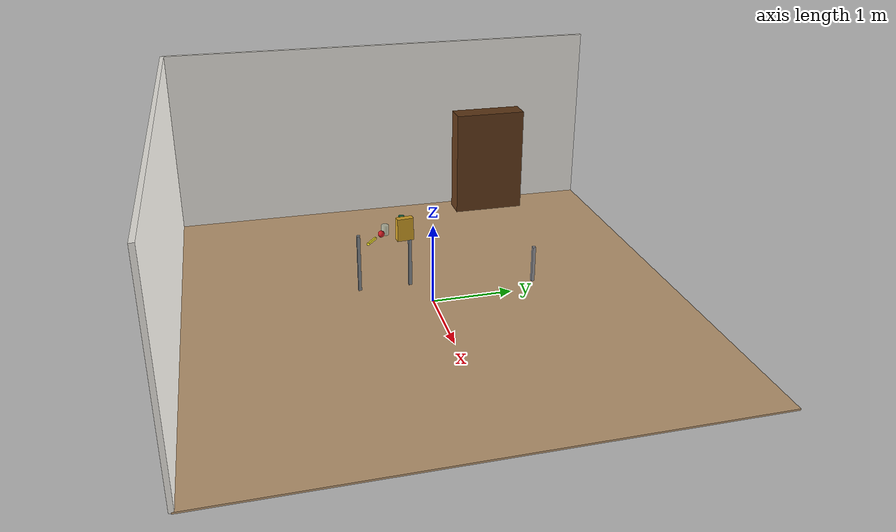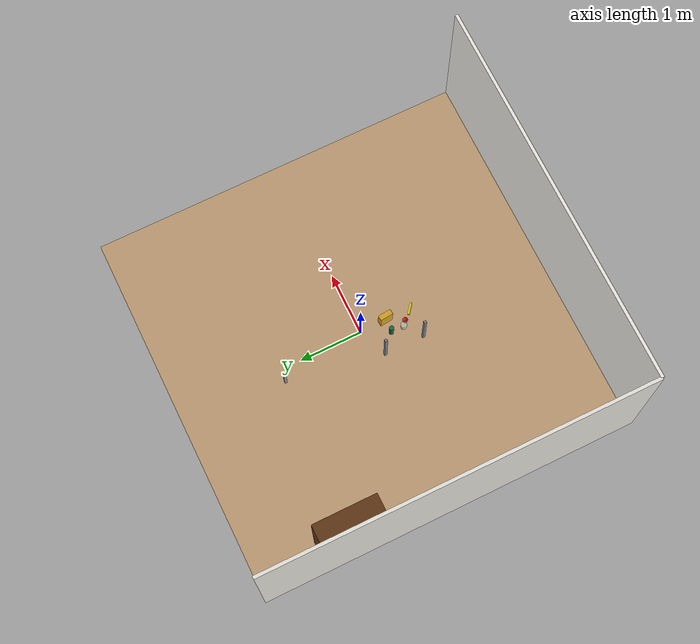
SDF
<sdf version="1.10">
 <world name="bps_room">
  <model name="floor">
   <static>true</static>
   <link name="link">
    <collision name="collision"><geometry><box><size>6 6 0.02</size></box></geometry></collision>
    <visual name="visual">
     <geometry><box><size>6 6 0.02</size></box></geometry>
     <material><ambient>0.76 0.62 0.46 1</ambient><diffuse>0.76 0.62 0.46 1</diffuse></material>
    </visual>
   </link>
  </model>
  <model name="wall_south">
   <static>true</static>
   <pose>0 -3 1.25 0 0 0</pose>
   <link name="link">
    <collision name="collision"><geometry><box><size>6 0.05 2.5</size></box></geometry></collision>
    <visual name="visual">
     <geometry><box><size>6 0.05 2.5</size></box></geometry>
     <material><ambient>0.95 0.94 0.91 1</ambient><diffuse>0.95 0.94 0.91 1</diffuse></material>
    </visual>
   </link>
  </model>
  <model name="wall_west">
   <static>true</static>
   <pose>-3 0 1.25 0 0 0</pose>
   <link name="link">
    <collision name="collision"><geometry><box><size>0.05 6 2.5</size></box></geometry></collision>
    <visual name="visual">
     <geometry><box><size>0.05 6 2.5</size></box></geometry>
     <material><ambient>0.93 0.92 0.89 1</ambient><diffuse>0.93 0.92 0.89 1</diffuse></material>
    </visual>
   </link>
  </model>
  <model name="bookshelf_body">
   <static>true</static>
   <pose>-2.7 1.5 0.75 0 0 0</pose>
   <link name="link">
    <collision name="collision"><geometry><box><size>0.3 1.0 1.5</size></box></geometry></collision>
    <visual name="visual">
     <geometry><box><size>0.3 1.0 1.5</size></box></geometry>
     <material><ambient>0.38 0.22 0.09 1</ambient><diffuse>0.38 0.22 0.09 1</diffuse></material>
    </visual>
   </link>
  </model>
  <model name="chair_leg_fl">
   <static>true</static>
   <pose>-0.2 1.35 0.24 0 0 0</pose>
   <link name="link">
    <collision name="collision"><geometry><box><size>0.04 0.04 0.48</size></box></geometry></collision>
    <visual name="visual">
     <geometry><box><size>0.04 0.04 0.48</size></box></geometry>
     <material><ambient>0.60 0.60 0.62 1</ambient><diffuse>0.60 0.60 0.62 1</diffuse></material>
    </visual>
   </link>
  </model>
  <model name="table_leg_fl">
   <static>true</static>
   <pose>-0.47 -0.82 0.375 0 0 0</pose>
   <link name="link">
    <collision name="collision"><geometry><box><size>0.04 0.04 0.75</size></box></geometry></collision>
    <visual name="visual">
     <geometry><box><size>0.04 0.04 0.75</size></box></geometry>
     <material><ambient>0.50 0.52 0.54 1</ambient><diffuse>0.50 0.52 0.54 1</diffuse></material>
    </visual>
   </link>
  </model>
  <model name="table_leg_bl">
   <static>true</static>
   <pose>-0.47 -0.18 0.375 0 0 0</pose>
   <link name="link">
    <collision name="collision"><geometry><box><size>0.04 0.04 0.75</size></box></geometry></collision>
    <visual name="visual">
     <geometry><box><size>0.04 0.04 0.75</size></box></geometry>
     <material><ambient>0.50 0.52 0.54 1</ambient><diffuse>0.50 0.52 0.54 1</diffuse></material>
    </visual>
   </link>
  </model>
  <model name="obj_bottle">
   <static>true</static>
   <pose>-0.40 -0.30 0.88 0 0 0.2</pose>
   <link name="link">
    <collision name="collision">
     <geometry><cylinder><radius>0.035</radius><length>0.22</length></cylinder></geometry>
    </collision>
    <visual name="visual">
     <geometry><cylinder><radius>0.035</radius><length>0.22</length></cylinder></geometry>
     <material>
      <ambient>0.10 0.42 0.28 1</ambient>
      <diffuse>0.10 0.42 0.28 1</diffuse>
      <specular>0.4 0.4 0.4 1</specular>
     </material>
     <plugin filename="gz-sim-label-system" name="gz::sim::systems::Label"><label>1</label></plugin>
    </visual>
   </link>
  </model>
  <model name="obj_cereal_box">
   <static>true</static>
   <pose>-0.20 -0.30 0.91 0 0 0.1</pose>
   <link name="link">
    <collision name="collision"><geometry><box><size>0.08 0.20 0.28</size></box></geometry></collision>
    <visual name="visual">
     <geometry><box><size>0.08 0.20 0.28</size></box></geometry>
     <material>
      <ambient>0.85 0.65 0.15 1</ambient>
      <diffuse>0.85 0.65 0.15 1</diffuse>
      <specular>0.2 0.2 0.2 1</specular>
     </material>
     <plugin filename="gz-sim-label-system" name="gz::sim::systems::Label"><label>2</label></plugin>
    </visual>
   </link>
  </model>
  <model name="obj_glass_jar">
   <static>true</static>
   <pose>-0.40 -0.50 0.83 0 0 0</pose>
   <link name="link">
    <collision name="collision">
     <geometry><cylinder><radius>0.045</radius><length>0.12</length></cylinder></geometry>
    </collision>
    <visual name="visual">
     <geometry><cylinder><radius>0.045</radius><length>0.12</length></cylinder></geometry>
     <material>
      <ambient>0.75 0.88 0.85 0.55</ambient>
      <diffuse>0.75 0.88 0.85 0.55</diffuse>
      <specular>0.6 0.6 0.6 1</specular>
     </material>
     <plugin filename="gz-sim-label-system" name="gz::sim::systems::Label"><label>8</label></plugin>
    </visual>
   </link>
  </model>
  <model name="obj_apple">
   <static>true</static>
   <pose>-0.33 -0.56 0.81 0 0 0</pose>
   <link name="link">
    <collision name="collision"><geometry><sphere><radius>0.04</radius></sphere></geometry></collision>
    <visual name="visual">
     <geometry><sphere><radius>0.04</radius></sphere></geometry>
     <material>
      <ambient>0.80 0.10 0.12 1</ambient>
      <diffuse>0.80 0.10 0.12 1</diffuse>
      <specular>0.5 0.5 0.5 1</specular>
     </material>
     <plugin filename="gz-sim-label-system" name="gz::sim::systems::Label"><label>9</label></plugin>
    </visual>
   </link>
  </model>
  <model name="obj_banana">
   <static>true</static>
   <pose>-0.20 -0.70 0.788 1.5708 0 0.9</pose>
   <link name="link">
    <collision name="collision">
     <geometry><cylinder><radius>0.018</radius><length>0.18</length></cylinder></geometry>
    </collision>
    <visual name="visual">
     <geometry><cylinder><radius>0.018</radius><length>0.18</length></cylinder></geometry>
     <material>
      <ambient>0.92 0.85 0.15 1</ambient>
      <diffuse>0.92 0.85 0.15 1</diffuse>
      <specular>0.3 0.3 0.3 1</specular>
     </material>
     <plugin filename="gz-sim-label-system" name="gz::sim::systems::Label"><label>15</label></plugin>
    </visual>
   </link>
  </model>
 </world>
</sdf>
